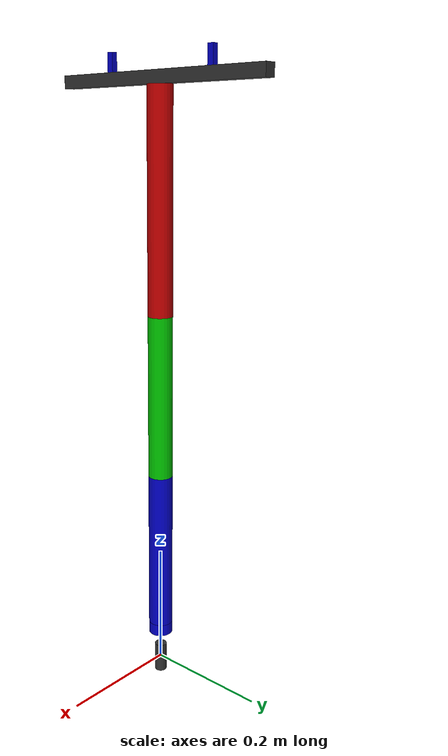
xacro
<?xml version="1.0"?>
<robot xmlns:xacro="http://www.ros.org/wiki/xacro" name="rrr_robot">

  <!--PROPERTIES -->
  <xacro:property name="link0_len" value="0.02"/>
  <xacro:property name="link1_len" value="0.27"/>
  <xacro:property name="link2_len" value="0.27"/>
  <xacro:property name="link3_len" value="0.35"/>
  <xacro:property name="link_rad" value="0.02"/>

  <!--  MATERIALS -->
  <material name="blue"><color rgba="0 0 0.8 1"/></material>
  <material name="green"><color rgba="0 0.8 0 1"/></material>
  <material name="red"><color rgba="0.8 0 0 1"/></material>
  <material name="grey"><color rgba="0.2 0.2 0.2 1"/></material>

  <!--  INERTIAL MACRO  -->
  <xacro:macro name="simple_inertial" params="mass">
    <inertial>
      <origin xyz="0 0 0" rpy="0 0 0"/>
      <mass value="${mass}"/>
      <inertia
        ixx="${mass * 0.01}" ixy="0" ixz="0"
        iyy="${mass * 0.01}" iyz="0"
        izz="${mass * 0.01}"/>
    </inertial>
  </xacro:macro>

  <!-- BASE -->
  <link name="base_link">
    <xacro:simple_inertial mass="0.001"/>
    <visual>
      <geometry><cylinder length="0.05" radius="0.01"/></geometry>
      <material name="grey"/>
    </visual>
    <collision>
      <geometry><cylinder length="0.05" radius="0.01"/></geometry>
      <self_collide>true</self_collide>
    </collision>
  </link>

  <joint name="joint0" type="revolute">
    <parent link="base_link"/>
    <child link="link0"/>
    <origin xyz="0 0 0.05" rpy="0 0 0"/>
    <axis xyz="0 0 1"/>
    <limit lower="-3.14" upper="3.14" effort="10.0" velocity="1.0"/>
  </joint>

  <!--  LINK 0 -->
  <link name="link0">
    <xacro:simple_inertial mass="0.3"/>
    <visual>
      <origin xyz="0 0 ${link0_len/2}" rpy="0 0 0"/>
      <geometry><cylinder length="${link0_len}" radius="${link_rad}"/></geometry>
      <material name="blue"/>
    </visual>
    <collision>
      <origin xyz="0 0 ${link0_len/2}" rpy="0 0 0"/>
      <geometry><cylinder length="${link0_len}" radius="${link_rad}"/></geometry>
      <self_collide>true</self_collide>
    </collision>
  </link>

  <joint name="joint1" type="revolute">
    <parent link="link0"/>
    <child link="link1"/>
    <origin xyz="0 0 ${link0_len}" rpy="0 0 0"/>
    <axis xyz="0 1 0"/>
    <limit lower="-1.57" upper="1.57" effort="10.0" velocity="1.0"/>
  </joint>

  <!-- LINK 1 -->
  <link name="link1">
    <xacro:simple_inertial mass="0.2"/>
    <visual>
      <origin xyz="0 0 ${link1_len/2}" rpy="0 0 0"/>
      <geometry><cylinder length="${link1_len}" radius="${link_rad}"/></geometry>
      <material name="blue"/>
    </visual>
    <collision>
      <origin xyz="0 0 ${link1_len/2}" rpy="0 0 0"/>
      <geometry><cylinder length="${link1_len}" radius="${link_rad}"/></geometry>
      <self_collide>true</self_collide>
    </collision>
  </link>

  <joint name="joint2" type="revolute">
    <parent link="link1"/>
    <child link="link2"/>
    <origin xyz="0 0 ${link1_len}" rpy="0 0 0"/>
    <axis xyz="0 1 0"/>
    <limit lower="-2.5" upper="2.5" effort="10.0" velocity="1.0"/>
  </joint>

  <!--  LINK 2 -->
  <link name="link2">
    <xacro:simple_inertial mass="0.3"/>
    <visual>
      <origin xyz="0 0 ${link2_len/2}" rpy="0 0 0"/>
      <geometry><cylinder length="${link2_len}" radius="${link_rad}"/></geometry>
      <material name="green"/>
    </visual>
    <collision>
      <origin xyz="0 0 ${link2_len/2}" rpy="0 0 0"/>
      <geometry><cylinder length="${link2_len}" radius="${link_rad}"/></geometry>
      <self_collide>true</self_collide>
    </collision>
  </link>

  <joint name="joint3" type="revolute">
    <parent link="link2"/>
    <child link="link3"/>
    <origin xyz="0 0 ${link2_len}" rpy="0 0 0"/>
    <axis xyz="0 1 0"/>
    <limit lower="-2.5" upper="2.5" effort="10.0" velocity="1.0"/>
  </joint>

  <!--  LINK 3 -->
  <link name="link3">
    <xacro:simple_inertial mass="0.3"/>
    <visual>
      <origin xyz="0 0 ${link3_len/2}" rpy="0 0 0"/>
      <geometry><cylinder length="${link3_len}" radius="${link_rad}"/></geometry>
      <material name="red"/>
    </visual>
    <collision>
      <origin xyz="0 0 ${link3_len/2}" rpy="0 0 0"/>
      <geometry><cylinder length="${link3_len}" radius="${link_rad}"/></geometry>
      <self_collide>true</self_collide>
    </collision>
  </link>

  <!-- GRIPPER BASE-->
  <joint name="joint4" type="revolute">
    <parent link="link3"/>
    <child link="gripper_base"/>
    <origin xyz="0 0 ${link3_len}" rpy="0 0 0"/>
    <axis xyz="0 0 1"/>
    <limit lower="-3.14" upper="3.14" effort="10.0" velocity="1.0"/>
  </joint>

  <link name="gripper_base">
    <xacro:simple_inertial mass="0.1"/>
    <visual>
      <origin xyz="0 0 0.01" rpy="0 0 0"/>
      <geometry><box size="0.02 0.4 0.02"/></geometry>
      <material name="grey"/>
    </visual>
    <collision>
      <origin xyz="0 0 0.01" rpy="0 0 0"/>
      <geometry><box size="0.02 0.4 0.02"/></geometry>
      <self_collide>true</self_collide>
    </collision>
  </link>

  <!--  LEFT FINGER  -->
  <joint name="finger_left_joint" type="prismatic">
    <parent link="gripper_base"/>
    <child link="gripper_finger_left"/>
    <origin xyz="0 0.10 0.03" rpy="0 0 0"/>
    <axis xyz="0 1 0"/>
    <limit lower="-0.09" upper="0.05" effort="10.0" velocity="0.5"/>
  </joint>

  <link name="gripper_finger_left">
    <xacro:simple_inertial mass="0.01"/>
    <visual>
      <geometry><box size="0.01 0.01 0.04"/></geometry>
      <material name="blue"/>
    </visual>
    <collision>
      <geometry><box size="0.01 0.01 0.04"/></geometry>
      <self_collide>true</self_collide>
    </collision>
  </link>

  <!--  RIGHT FINGER -->
  <joint name="finger_right_joint" type="prismatic">
    <parent link="gripper_base"/>
    <child link="gripper_finger_right"/>
    <origin xyz="0 -0.10 0.03" rpy="0 0 0"/>
    <axis xyz="0 -1 0"/>
    <limit lower="-0.09" upper="0.05" effort="10.0" velocity="0.5"/>
    <mimic joint="finger_left_joint" multiplier="1.0" offset="0.0"/>
  </joint>

  <link name="gripper_finger_right">
    <xacro:simple_inertial mass="0.01"/>
    <visual>
      <geometry><box size="0.01 0.01 0.04"/></geometry>
      <material name="blue"/>
    </visual>
    <collision>
      <geometry><box size="0.01 0.01 0.04"/></geometry>
      <self_collide>true</self_collide>
    </collision>
  </link>

</robot>
